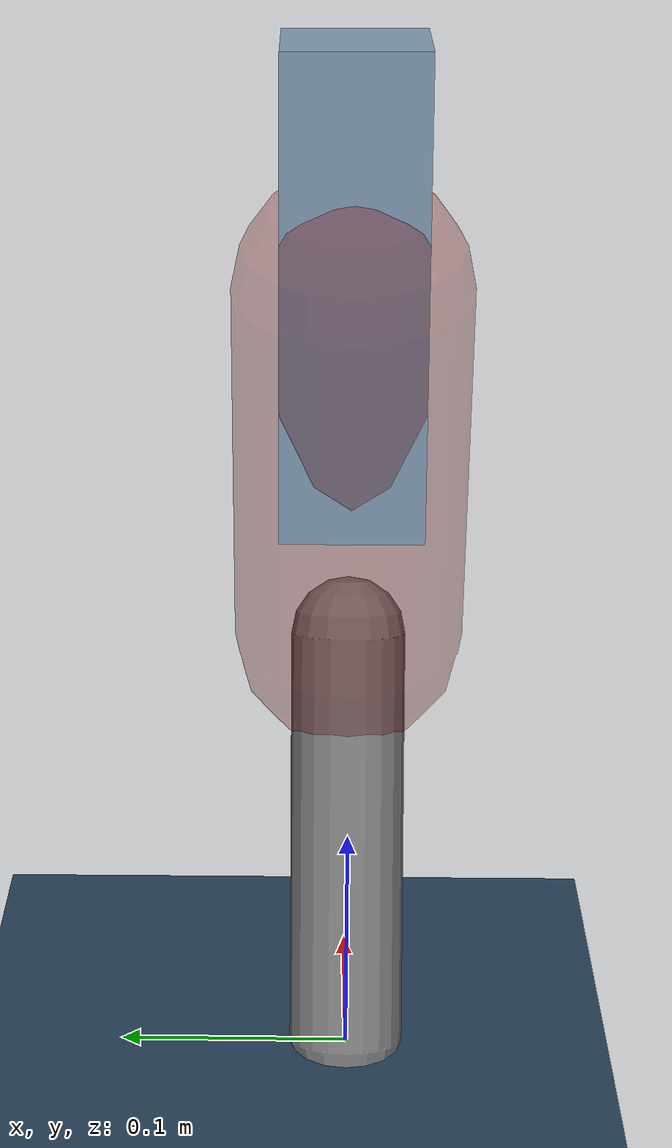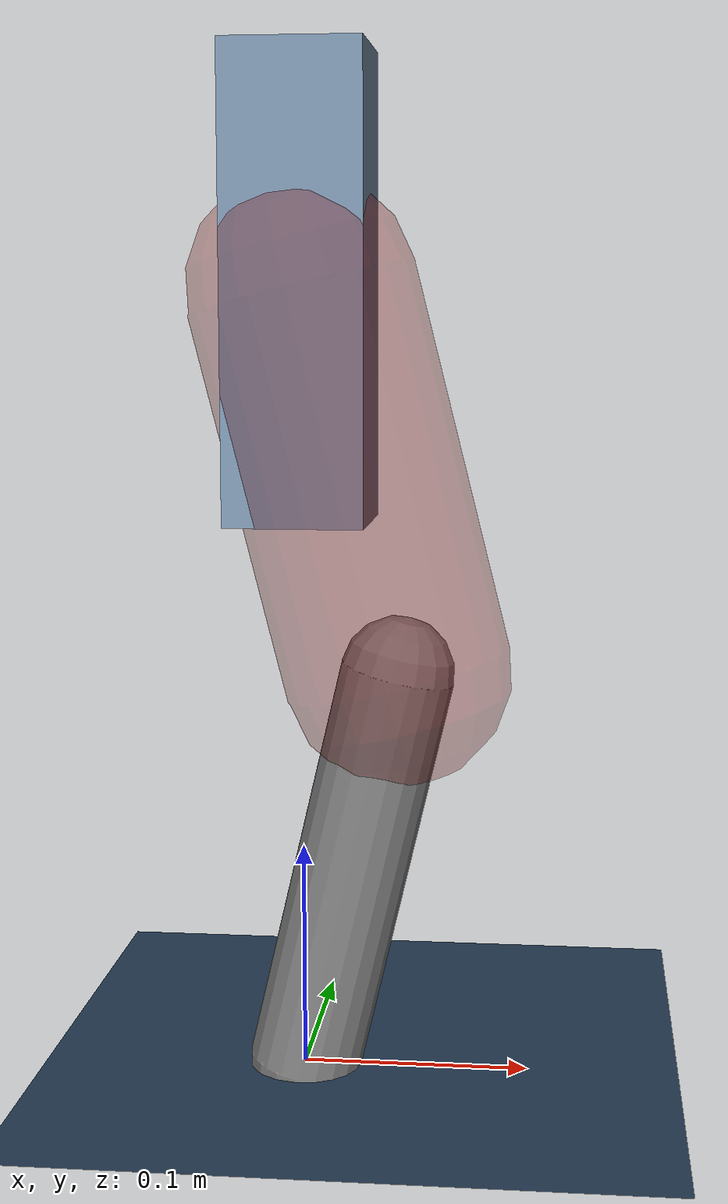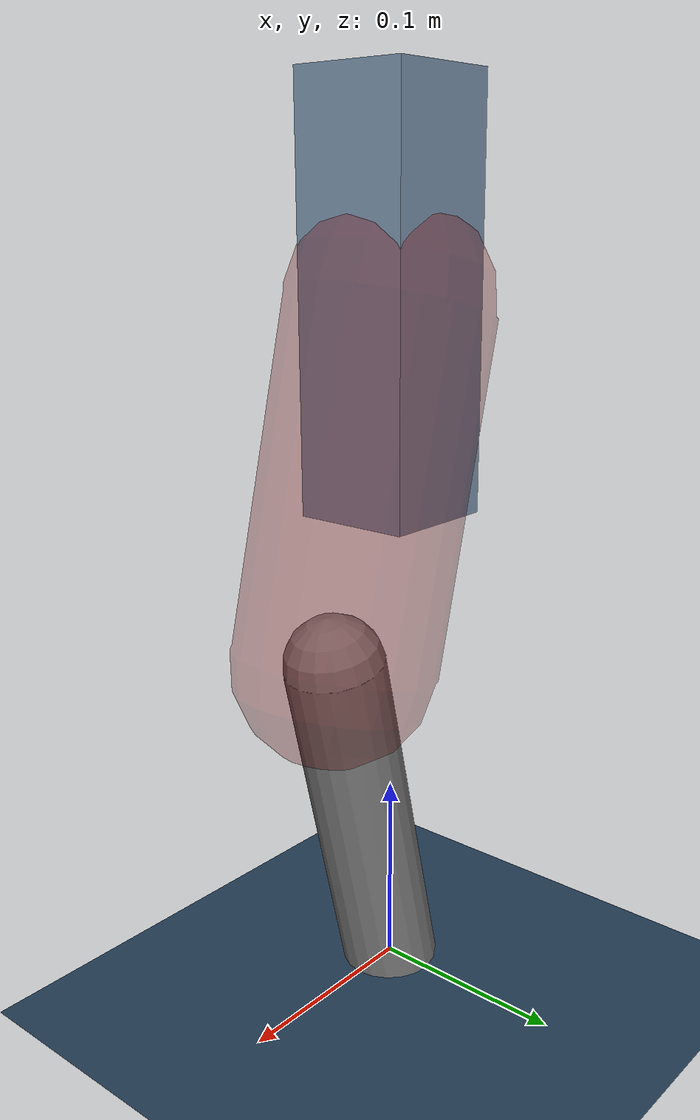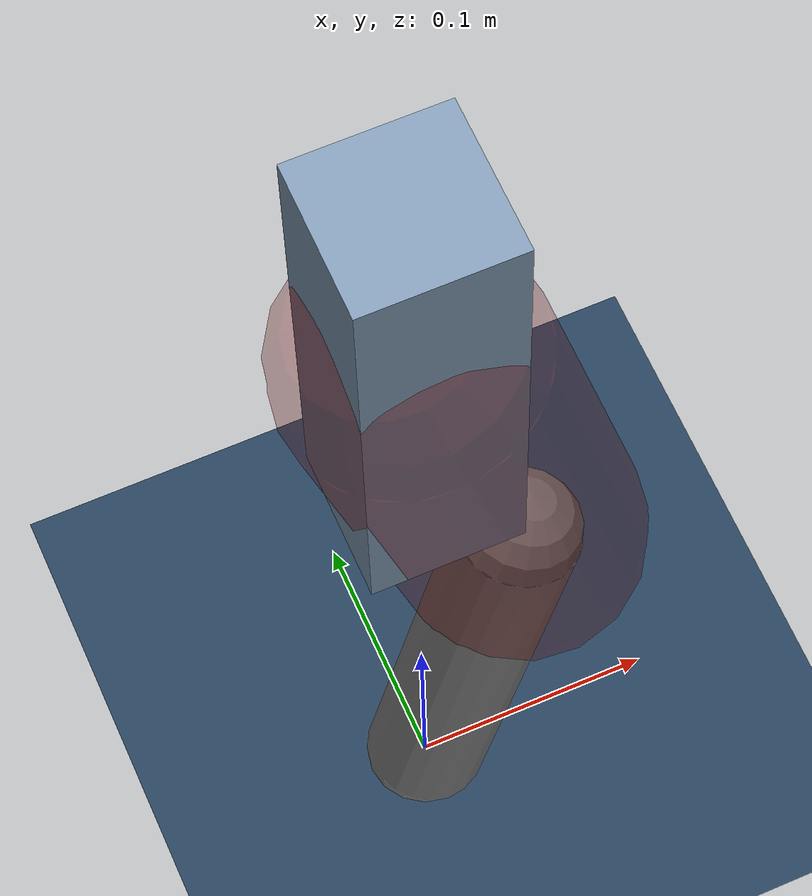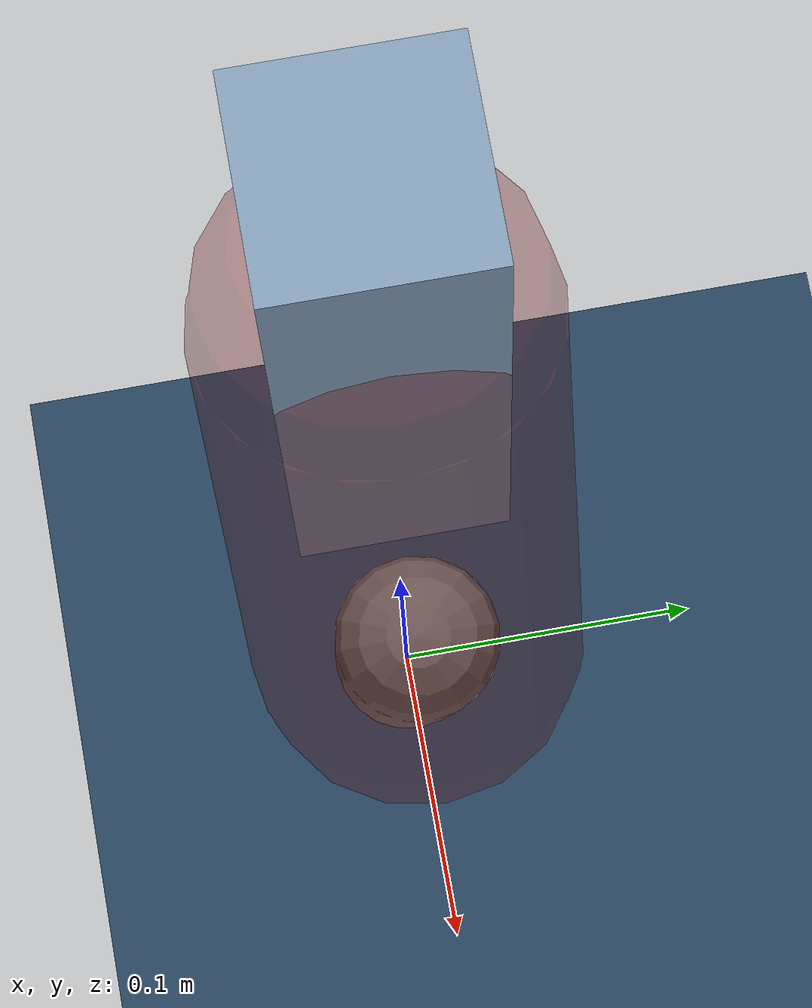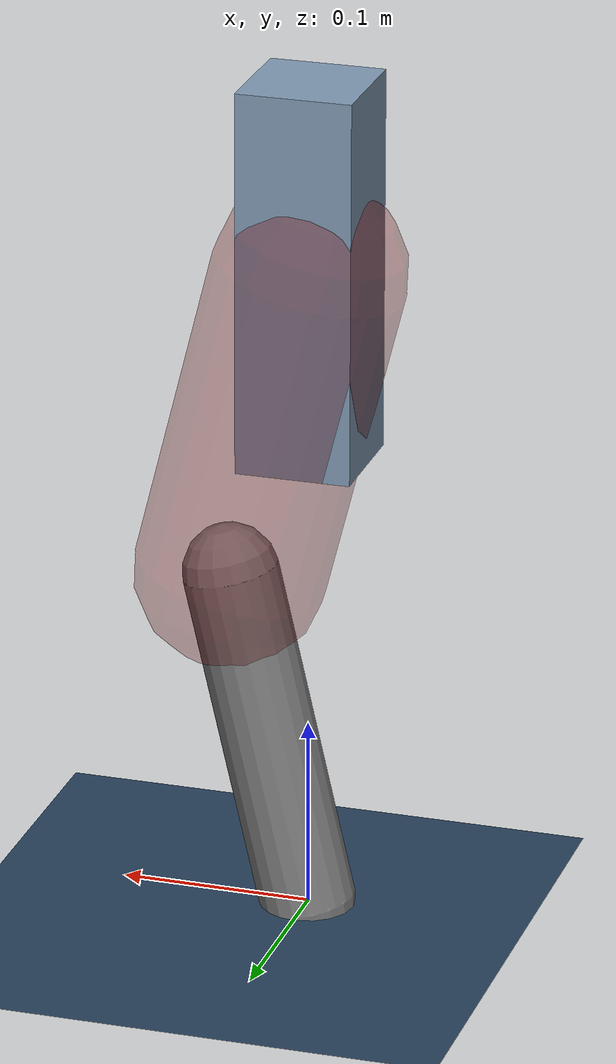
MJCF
<mujoco model="Hopper2D">
	<compiler inertiafromgeom="true" angle="radian" />
	<option timestep="0.001" integrator="implicit" cone="elliptic" solver="Newton" tolerance="1e-10" />

	<default>
		<geom contype="1" conaffinity="1" condim="3" friction="2 0.005 0.0001" solref="0.005 1" />
		<joint limited="true" damping="0.1" />
	</default>

	<asset>
		<texture name="skybox" type="skybox" builtin="gradient" rgb1=".4 .6 .8" rgb2="0 0 0" width="800" height="800" />
		<texture name="grid" type="2d" builtin="checker" rgb1=".1 .2 .3" rgb2=".2 .3 .4" width="300" height="300" mark="edge" markrgb=".2 .3 .4" />
		<material name="ground" texture="grid" texrepeat="1 1" texuniform="true" reflectance="0.1" />
		<material name="leg" rgba="0.5 0.6 0.7 1" />
	</asset>

	<worldbody>

		<geom name="floor" type="plane" size="5 5 0.25" material="ground" />

		<light directional="false" diffuse="0.8 0.8 0.8" specular="0.3 0.3 0.3" pos="0 0 2" dir="0 0 -1" />
		<light mode="targetbodycom" target="base" directional="false" diffuse="0.8 0.8 0.8" specular="0.3 0.3 0.3" pos="0 0 2" dir="0 0 -1" />

		<camera name="fixed" pos="0 -2 1" xyaxes="1 0 0 0 0 1" />
		<camera name="tracking" mode="trackcom" pos="0 -3 1" />

		<body name="root" pos="0 0 0.345266405348975">
			<joint name="slide_x" type="slide" axis="1 0 0" range="-100 100" />
			<joint name="slide_z" type="slide" axis="0 0 1" range="0 10" />

			<body name="base" pos="0 0 0">
				<geom name="torso" type="box" size="0.03 0.03 0.1" mass="2.246" material="leg" />

				<body name="link1" pos="0 0 0" euler="0 1.3236058429959432 0">
					<joint type="hinge" axis="0 -1 0" pos="0 0 0" name="hinge1" limited="true" range="-3.14 3.14" stiffness="0" damping="0.1" />
					<geom name="thigh" type="capsule" fromto="0 0 0 0.17090478441377333 0 0" size="0.05" rgba="0.5 0 0 0.3" mass="0.6584714825930559" />

					<body name="link2" pos="0.17090478441377333 0 0" euler="0 0.4760030357703838 0">
						<joint type="hinge" axis="0 -1 0" pos="0 0 0" name="hinge2" limited="true" range="-3.14 3.14" stiffness="0" damping="0.1" />
						<geom name="shank" type="capsule" fromto="0 0 0 0.1843616209352017 0 0" size="0.025" mass="0.38762545884168154" />

					</body>
				</body>
			</body>
		</body>
	</worldbody>

	<actuator>
		<motor name="torque1" joint="hinge1" ctrlrange="-94.85407946740888 94.85407946740888" ctrllimited="true" gear="1" />
		<motor name="torque2" joint="hinge2" ctrlrange="-38.1045211772239 38.1045211772239" ctrllimited="true" gear="1" />
	</actuator>
</mujoco>
